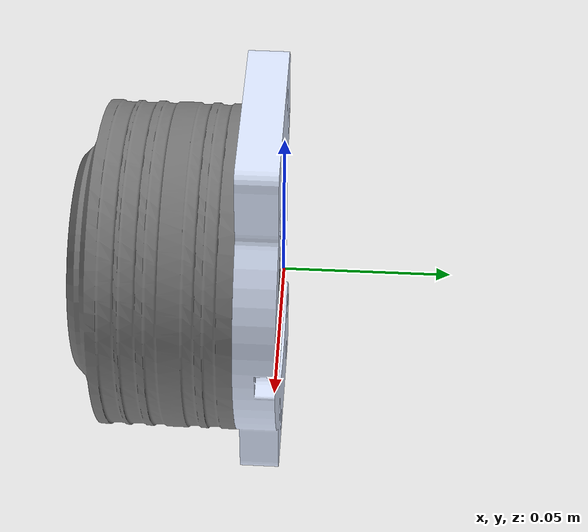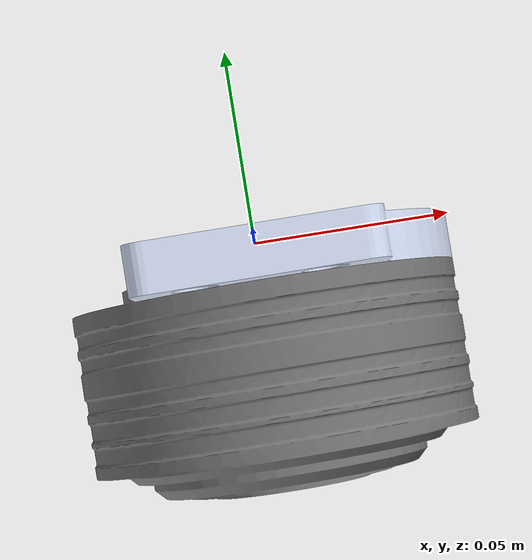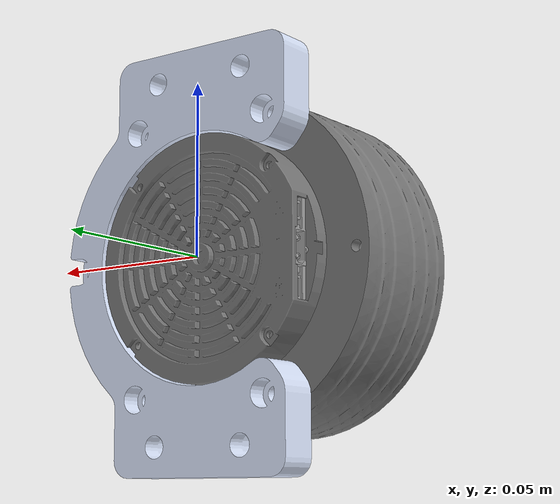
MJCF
<mujoco model="base_link_obj">
  <asset>
    <mesh name="base_link_00" file="base_link_00.obj"/>
    <mesh name="base_link_01" file="base_link_01.obj"/>
    <mesh name="base_link_02" file="base_link_02.obj"/>
    <material name="base_link_00_mat" rgba="0.627451 0.627451 0.627451 1.000000"/>
    <material name="base_link_01_mat" rgba="0.470588 0.470588 0.470588 1.000000"/>
    <material name="base_link_02_mat" rgba="0.866667 0.909804 1.000000 1.000000"/>
  </asset>
  <worldbody>
    <body name="base_link_obj">
      <geom type="mesh" mesh="base_link_00" material="base_link_00_mat" contype="0" conaffinity="0" group="1"/>
      <geom type="mesh" mesh="base_link_01" material="base_link_01_mat" contype="0" conaffinity="0" group="1"/>
      <geom type="mesh" mesh="base_link_02" material="base_link_02_mat" contype="0" conaffinity="0" group="1"/>
    </body>
  </worldbody>
</mujoco>
